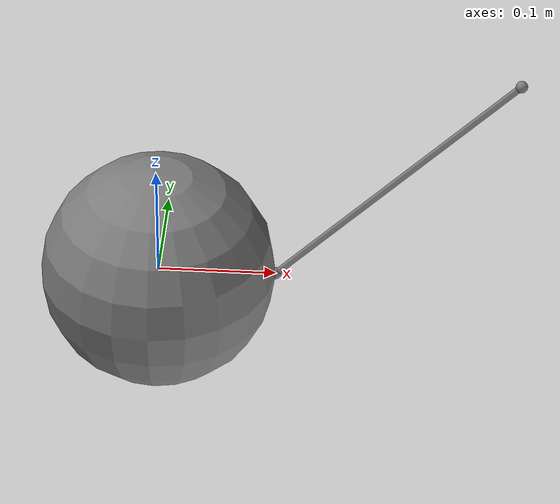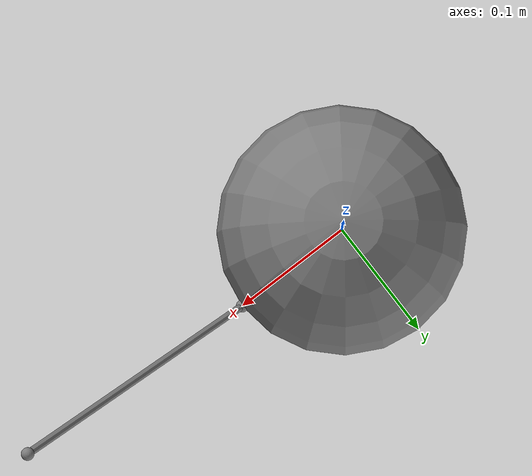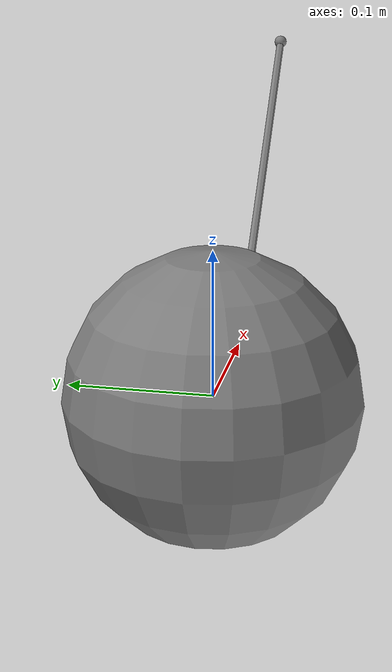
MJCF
<mujoco><worldbody><body>
                <joint type="ball"/>
                <joint name="h" type="hinge" axis="0 1 0"/>
                <geom type="sphere" size="0.1"/>
                <site name="a" pos="0.1 0 0"/>
            </body><site name="b" pos="0.3 0 0.2"/></worldbody>
            <tendon><spatial><site site="a"/><site site="b"/></spatial></tendon>
            <actuator><motor joint="h"/></actuator></mujoco>
